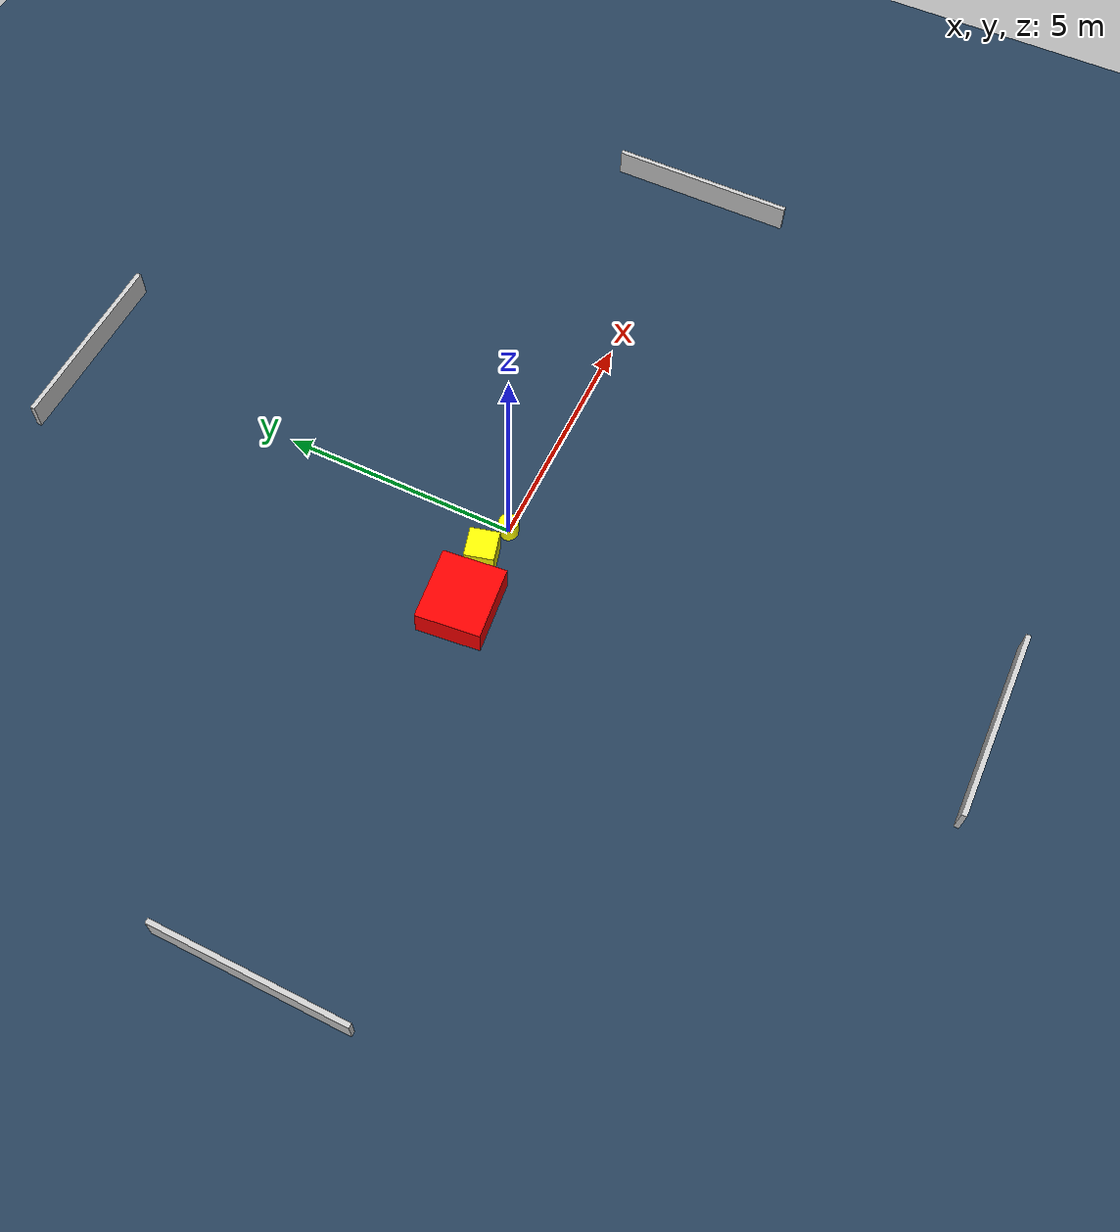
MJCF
<?xml version="1.0" ?>
<mujoco model="generated_environment">
  <option timestep="0.01" integrator="RK4" cone="elliptic"/>
  <default>
    <geom density="1"/>
  </default>
  <asset>
    <texture builtin="gradient" height="3072" name="skybox" rgb1="0.3 0.5 0.7" rgb2="0 0 0" type="skybox" width="512"/>
    <texture builtin="checker" height="300" name="groundplane" rgb1="0.2 0.3 0.4" rgb2="0.1 0.2 0.3" type="2d" width="300"/>
    <material name="groundplane" reflectance="0.2" texrepeat="5 5" texture="groundplane"/>
  </asset>
  <worldbody>
    <light dir="0 0 -1" directional="true" pos="0 0 1.5"/>
    <geom condim="3" friction="0.5 0.005 0.001" material="groundplane" name="floor" pos="0 0 0" size="0 0 0.05" type="plane"/>
    <body name="walls">
      <geom name="wall_1" condim="4" pos="-10.0 0.0 0.3" rgba="0.800000011920929 0.800000011920929 0.800000011920929 1.0" size="0.05 2.0 0.3" type="box"/>
      <geom name="wall_2" condim="4" pos="10.0 0.0 0.3" rgba="0.800000011920929 0.800000011920929 0.800000011920929 1.0" size="0.05 2.0 0.3" type="box"/>
      <geom name="wall_3" condim="4" pos="0.0 -10.0 0.3" rgba="0.800000011920929 0.800000011920929 0.800000011920929 1.0" size="2.0 0.05 0.3" type="box"/>
      <geom name="wall_4" condim="4" pos="0.0 10.0 0.3" rgba="0.800000011920929 0.800000011920929 0.800000011920929 1.0" size="2.0 0.05 0.3" type="box"/>
    </body>
    <body name="robot">
      <joint name="joint_x" type="slide" pos="0 0 0" axis="1 0 0"/>
      <joint name="joint_y" type="slide" pos="0 0 0" axis="0 1 0"/>
      <geom name="robot" type="cylinder" pos="0.0 0.0 0.2" size="0.2 0.2 0.0" mass="5.0" friction="1.0 0.005 0.0001" condim="4" rgba="1.0 1.0 0.0 1.0"/>
    </body>
    <body name="obstacle_1_movable">
      <geom name="obstacle_1_movable" condim="4" pos="-0.7864126303796363 0.20134780198924077 0.3" euler="0 0 104.59748293902328" friction="0.0 0.005 0.001" rgba="1.0 1.0 0.0 1.0" size="0.3066364682355627 0.3230055221553796 0.3" type="box" mass="0.1"/>
      <joint type="free"/>
    </body>
    <body name="obstacle_2_static">
      <geom name="obstacle_2_static" condim="4" pos="-1.9438580669903347 0.06671768313500587 0.3" euler="0 0 96.18904236808437" friction="0.0 0.005 0.001" rgba="1.0 0.0 0.0 1.0" size="0.6708264451188166 0.7637826920385284 0.3" type="box"/>
    </body>
  </worldbody>
  <actuator>
    <motor name="actuator_x" joint="joint_x" gear="1" ctrlrange="-1 1"/>
    <motor name="actuator_y" joint="joint_y" gear="1" ctrlrange="-1 1"/>
  </actuator>
</mujoco>
